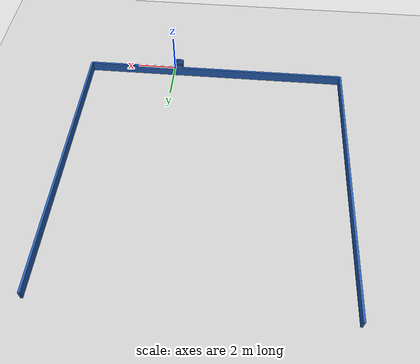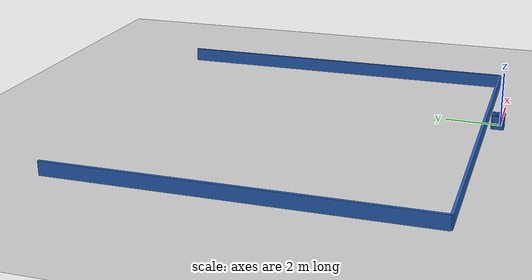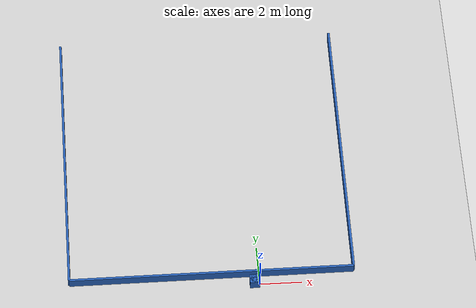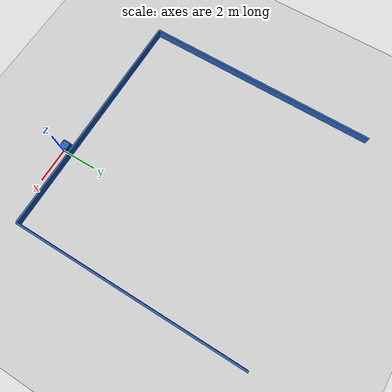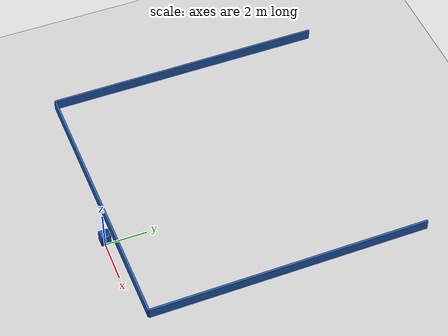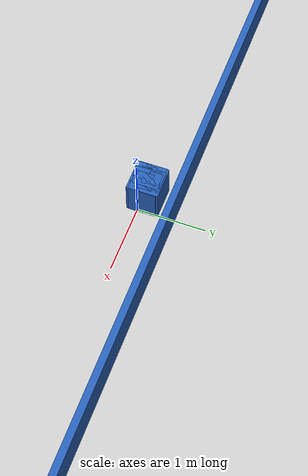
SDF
<?xml version="1.0" ?>
    <sdf version="1.5">
      <world name="default">
        <!-- A global light source -->
        <include>
          <uri>model://sun</uri>
        </include>
        <!-- A ground plane -->
        <include>
          <uri>model://ground_plane</uri>
        </include>

    <model name='libopen_space_final_T2B_125_86'>
      <static>1</static>
      <pose frame=''>-0.225000 0.075000 0.000000 0.000000 0.000000 0.000000</pose>
      <link name='link'>
        <inertial>
          <mass>1</mass>
          <inertia>
            <ixx>0.145833</ixx>
            <ixy>0</ixy>
            <ixz>0</ixz>
            <iyy>0.145833</iyy>
            <iyz>0</iyz>
            <izz>0.125</izz>
          </inertia>
        </inertial>
        <collision name='collision'>
          <geometry>
            <box>
              <size>0.34 0.28 1</size>
            </box>
          </geometry>
          <max_contacts>10</max_contacts>
          <surface>
            <contact>
              <ode/>
            </contact>
            <bounce/>
            <friction>
              <torsional>
                <ode/>
              </torsional>
              <ode/>
            </friction>
          </surface>
        </collision>
        <visual name='visual'>
          <geometry>
            <box>
              <size>0.34 0.28 1</size>
            </box>
          </geometry>
	    <material>
              <ambient>0.152000 0.379000 0.720000 1</ambient>
	      <diffuse>0.152000 0.379000 0.720000 1</diffuse>
          </material>
          <material>
            <script>
              <name>Gazebo/Grey</name>
              <uri>file://media/materials/scripts/gazebo.material</uri>
            </script>
          </material>
        </visual>
        <self_collide>0</self_collide>
        <kinematic>0</kinematic>
        <gravity>1</gravity>
      </link>
      <plugin name='libopen_space_final_T2B_125_86' filename='libopen_space_final_T2B_125_86.so'/>
    </model>

    <model name='libopen_space_final_T2B_125_67'>
      <static>1</static>
      <pose frame=''>-0.225000 0.075000 0.000000 0.000000 0.000000 0.000000</pose>
      <link name='link'>
        <inertial>
          <mass>1</mass>
          <inertia>
            <ixx>0.145833</ixx>
            <ixy>0</ixy>
            <ixz>0</ixz>
            <iyy>0.145833</iyy>
            <iyz>0</iyz>
            <izz>0.125</izz>
          </inertia>
        </inertial>
        <collision name='collision'>
          <geometry>
            <box>
              <size>0.31 0.43 1</size>
            </box>
          </geometry>
          <max_contacts>10</max_contacts>
          <surface>
            <contact>
              <ode/>
            </contact>
            <bounce/>
            <friction>
              <torsional>
                <ode/>
              </torsional>
              <ode/>
            </friction>
          </surface>
        </collision>
        <visual name='visual'>
          <geometry>
            <box>
              <size>0.31 0.43 1</size>
            </box>
          </geometry>
	    <material>
              <ambient>0.152000 0.379000 0.720000 1</ambient>
	      <diffuse>0.152000 0.379000 0.720000 1</diffuse>
          </material>
          <material>
            <script>
              <name>Gazebo/Grey</name>
              <uri>file://media/materials/scripts/gazebo.material</uri>
            </script>
          </material>
        </visual>
        <self_collide>0</self_collide>
        <kinematic>0</kinematic>
        <gravity>1</gravity>
      </link>
      <plugin name='libopen_space_final_T2B_125_67' filename='libopen_space_final_T2B_125_67.so'/>
    </model>

    <model name='libopen_space_final_T2B_64_52'>
      <static>1</static>
      <pose frame=''>-0.225000 0.075000 0.000000 0.000000 0.000000 0.000000</pose>
      <link name='link'>
        <inertial>
          <mass>1</mass>
          <inertia>
            <ixx>0.145833</ixx>
            <ixy>0</ixy>
            <ixz>0</ixz>
            <iyy>0.145833</iyy>
            <iyz>0</iyz>
            <izz>0.125</izz>
          </inertia>
        </inertial>
        <collision name='collision'>
          <geometry>
            <box>
              <size>0.17 0.14 1</size>
            </box>
          </geometry>
          <max_contacts>10</max_contacts>
          <surface>
            <contact>
              <ode/>
            </contact>
            <bounce/>
            <friction>
              <torsional>
                <ode/>
              </torsional>
              <ode/>
            </friction>
          </surface>
        </collision>
        <visual name='visual'>
          <geometry>
            <box>
              <size>0.17 0.14 1</size>
            </box>
          </geometry>
	    <material>
              <ambient>0.152000 0.379000 0.720000 1</ambient>
	      <diffuse>0.152000 0.379000 0.720000 1</diffuse>
          </material>
          <material>
            <script>
              <name>Gazebo/Grey</name>
              <uri>file://media/materials/scripts/gazebo.material</uri>
            </script>
          </material>
        </visual>
        <self_collide>0</self_collide>
        <kinematic>0</kinematic>
        <gravity>1</gravity>
      </link>
      <plugin name='libopen_space_final_T2B_64_52' filename='libopen_space_final_T2B_64_52.so'/>
    </model>

    <model name='libopen_space_final_T2B_134_25'>
      <static>1</static>
      <pose frame=''>-0.225000 0.075000 0.000000 0.000000 0.000000 0.000000</pose>
      <link name='link'>
        <inertial>
          <mass>1</mass>
          <inertia>
            <ixx>0.145833</ixx>
            <ixy>0</ixy>
            <ixz>0</ixz>
            <iyy>0.145833</iyy>
            <iyz>0</iyz>
            <izz>0.125</izz>
          </inertia>
        </inertial>
        <collision name='collision'>
          <geometry>
            <box>
              <size>0.26 0.36 1</size>
            </box>
          </geometry>
          <max_contacts>10</max_contacts>
          <surface>
            <contact>
              <ode/>
            </contact>
            <bounce/>
            <friction>
              <torsional>
                <ode/>
              </torsional>
              <ode/>
            </friction>
          </surface>
        </collision>
        <visual name='visual'>
          <geometry>
            <box>
              <size>0.26 0.36 1</size>
            </box>
          </geometry>
	    <material>
              <ambient>0.152000 0.379000 0.720000 1</ambient>
	      <diffuse>0.152000 0.379000 0.720000 1</diffuse>
          </material>
          <material>
            <script>
              <name>Gazebo/Grey</name>
              <uri>file://media/materials/scripts/gazebo.material</uri>
            </script>
          </material>
        </visual>
        <self_collide>0</self_collide>
        <kinematic>0</kinematic>
        <gravity>1</gravity>
      </link>
      <plugin name='libopen_space_final_T2B_134_25' filename='libopen_space_final_T2B_134_25.so'/>
    </model>

    <model name='libopen_space_final_T2B_56_75'>
      <static>1</static>
      <pose frame=''>-0.225000 0.075000 0.000000 0.000000 0.000000 0.000000</pose>
      <link name='link'>
        <inertial>
          <mass>1</mass>
          <inertia>
            <ixx>0.145833</ixx>
            <ixy>0</ixy>
            <ixz>0</ixz>
            <iyy>0.145833</iyy>
            <iyz>0</iyz>
            <izz>0.125</izz>
          </inertia>
        </inertial>
        <collision name='collision'>
          <geometry>
            <box>
              <size>0.48 0.40 1</size>
            </box>
          </geometry>
          <max_contacts>10</max_contacts>
          <surface>
            <contact>
              <ode/>
            </contact>
            <bounce/>
            <friction>
              <torsional>
                <ode/>
              </torsional>
              <ode/>
            </friction>
          </surface>
        </collision>
        <visual name='visual'>
          <geometry>
            <box>
              <size>0.48 0.40 1</size>
            </box>
          </geometry>
	    <material>
              <ambient>0.152000 0.379000 0.720000 1</ambient>
	      <diffuse>0.152000 0.379000 0.720000 1</diffuse>
          </material>
          <material>
            <script>
              <name>Gazebo/Grey</name>
              <uri>file://media/materials/scripts/gazebo.material</uri>
            </script>
          </material>
        </visual>
        <self_collide>0</self_collide>
        <kinematic>0</kinematic>
        <gravity>1</gravity>
      </link>
      <plugin name='libopen_space_final_T2B_56_75' filename='libopen_space_final_T2B_56_75.so'/>
    </model>

    <model name='libopen_space_final_T2B_83_61'>
      <static>1</static>
      <pose frame=''>-0.225000 0.075000 0.000000 0.000000 0.000000 0.000000</pose>
      <link name='link'>
        <inertial>
          <mass>1</mass>
          <inertia>
            <ixx>0.145833</ixx>
            <ixy>0</ixy>
            <ixz>0</ixz>
            <iyy>0.145833</iyy>
            <iyz>0</iyz>
            <izz>0.125</izz>
          </inertia>
        </inertial>
        <collision name='collision'>
          <geometry>
            <box>
              <size>0.47 0.46 1</size>
            </box>
          </geometry>
          <max_contacts>10</max_contacts>
          <surface>
            <contact>
              <ode/>
            </contact>
            <bounce/>
            <friction>
              <torsional>
                <ode/>
              </torsional>
              <ode/>
            </friction>
          </surface>
        </collision>
        <visual name='visual'>
          <geometry>
            <box>
              <size>0.47 0.46 1</size>
            </box>
          </geometry>
	    <material>
              <ambient>0.152000 0.379000 0.720000 1</ambient>
	      <diffuse>0.152000 0.379000 0.720000 1</diffuse>
          </material>
          <material>
            <script>
              <name>Gazebo/Grey</name>
              <uri>file://media/materials/scripts/gazebo.material</uri>
            </script>
          </material>
        </visual>
        <self_collide>0</self_collide>
        <kinematic>0</kinematic>
        <gravity>1</gravity>
      </link>
      <plugin name='libopen_space_final_T2B_83_61' filename='libopen_space_final_T2B_83_61.so'/>
    </model>

    <model name='libopen_space_final_T2B_103_35'>
      <static>1</static>
      <pose frame=''>-0.225000 0.075000 0.000000 0.000000 0.000000 0.000000</pose>
      <link name='link'>
        <inertial>
          <mass>1</mass>
          <inertia>
            <ixx>0.145833</ixx>
            <ixy>0</ixy>
            <ixz>0</ixz>
            <iyy>0.145833</iyy>
            <iyz>0</iyz>
            <izz>0.125</izz>
          </inertia>
        </inertial>
        <collision name='collision'>
          <geometry>
            <box>
              <size>0.30 0.31 1</size>
            </box>
          </geometry>
          <max_contacts>10</max_contacts>
          <surface>
            <contact>
              <ode/>
            </contact>
            <bounce/>
            <friction>
              <torsional>
                <ode/>
              </torsional>
              <ode/>
            </friction>
          </surface>
        </collision>
        <visual name='visual'>
          <geometry>
            <box>
              <size>0.30 0.31 1</size>
            </box>
          </geometry>
	    <material>
              <ambient>0.152000 0.379000 0.720000 1</ambient>
	      <diffuse>0.152000 0.379000 0.720000 1</diffuse>
          </material>
          <material>
            <script>
              <name>Gazebo/Grey</name>
              <uri>file://media/materials/scripts/gazebo.material</uri>
            </script>
          </material>
        </visual>
        <self_collide>0</self_collide>
        <kinematic>0</kinematic>
        <gravity>1</gravity>
      </link>
      <plugin name='libopen_space_final_T2B_103_35' filename='libopen_space_final_T2B_103_35.so'/>
    </model>

    <model name='libopen_space_final_T2B_123_20'>
      <static>1</static>
      <pose frame=''>-0.225000 0.075000 0.000000 0.000000 0.000000 0.000000</pose>
      <link name='link'>
        <inertial>
          <mass>1</mass>
          <inertia>
            <ixx>0.145833</ixx>
            <ixy>0</ixy>
            <ixz>0</ixz>
            <iyy>0.145833</iyy>
            <iyz>0</iyz>
            <izz>0.125</izz>
          </inertia>
        </inertial>
        <collision name='collision'>
          <geometry>
            <box>
              <size>0.36 0.41 1</size>
            </box>
          </geometry>
          <max_contacts>10</max_contacts>
          <surface>
            <contact>
              <ode/>
            </contact>
            <bounce/>
            <friction>
              <torsional>
                <ode/>
              </torsional>
              <ode/>
            </friction>
          </surface>
        </collision>
        <visual name='visual'>
          <geometry>
            <box>
              <size>0.36 0.41 1</size>
            </box>
          </geometry>
	    <material>
              <ambient>0.152000 0.379000 0.720000 1</ambient>
	      <diffuse>0.152000 0.379000 0.720000 1</diffuse>
          </material>
          <material>
            <script>
              <name>Gazebo/Grey</name>
              <uri>file://media/materials/scripts/gazebo.material</uri>
            </script>
          </material>
        </visual>
        <self_collide>0</self_collide>
        <kinematic>0</kinematic>
        <gravity>1</gravity>
      </link>
      <plugin name='libopen_space_final_T2B_123_20' filename='libopen_space_final_T2B_123_20.so'/>
    </model>

    <model name='libopen_space_final_T2B_103_85'>
      <static>1</static>
      <pose frame=''>-0.225000 0.075000 0.000000 0.000000 0.000000 0.000000</pose>
      <link name='link'>
        <inertial>
          <mass>1</mass>
          <inertia>
            <ixx>0.145833</ixx>
            <ixy>0</ixy>
            <ixz>0</ixz>
            <iyy>0.145833</iyy>
            <iyz>0</iyz>
            <izz>0.125</izz>
          </inertia>
        </inertial>
        <collision name='collision'>
          <geometry>
            <box>
              <size>0.17 0.34 1</size>
            </box>
          </geometry>
          <max_contacts>10</max_contacts>
          <surface>
            <contact>
              <ode/>
            </contact>
            <bounce/>
            <friction>
              <torsional>
                <ode/>
              </torsional>
              <ode/>
            </friction>
          </surface>
        </collision>
        <visual name='visual'>
          <geometry>
            <box>
              <size>0.17 0.34 1</size>
            </box>
          </geometry>
	    <material>
              <ambient>0.152000 0.379000 0.720000 1</ambient>
	      <diffuse>0.152000 0.379000 0.720000 1</diffuse>
          </material>
          <material>
            <script>
              <name>Gazebo/Grey</name>
              <uri>file://media/materials/scripts/gazebo.material</uri>
            </script>
          </material>
        </visual>
        <self_collide>0</self_collide>
        <kinematic>0</kinematic>
        <gravity>1</gravity>
      </link>
      <plugin name='libopen_space_final_T2B_103_85' filename='libopen_space_final_T2B_103_85.so'/>
    </model>

    <model name='libopen_space_final_T2B_85_42'>
      <static>1</static>
      <pose frame=''>-0.225000 0.075000 0.000000 0.000000 0.000000 0.000000</pose>
      <link name='link'>
        <inertial>
          <mass>1</mass>
          <inertia>
            <ixx>0.145833</ixx>
            <ixy>0</ixy>
            <ixz>0</ixz>
            <iyy>0.145833</iyy>
            <iyz>0</iyz>
            <izz>0.125</izz>
          </inertia>
        </inertial>
        <collision name='collision'>
          <geometry>
            <box>
              <size>0.46 0.18 1</size>
            </box>
          </geometry>
          <max_contacts>10</max_contacts>
          <surface>
            <contact>
              <ode/>
            </contact>
            <bounce/>
            <friction>
              <torsional>
                <ode/>
              </torsional>
              <ode/>
            </friction>
          </surface>
        </collision>
        <visual name='visual'>
          <geometry>
            <box>
              <size>0.46 0.18 1</size>
            </box>
          </geometry>
	    <material>
              <ambient>0.152000 0.379000 0.720000 1</ambient>
	      <diffuse>0.152000 0.379000 0.720000 1</diffuse>
          </material>
          <material>
            <script>
              <name>Gazebo/Grey</name>
              <uri>file://media/materials/scripts/gazebo.material</uri>
            </script>
          </material>
        </visual>
        <self_collide>0</self_collide>
        <kinematic>0</kinematic>
        <gravity>1</gravity>
      </link>
      <plugin name='libopen_space_final_T2B_85_42' filename='libopen_space_final_T2B_85_42.so'/>
    </model>

    <model name='libopen_space_final_T2B_119_99'>
      <static>1</static>
      <pose frame=''>-0.225000 0.075000 0.000000 0.000000 0.000000 0.000000</pose>
      <link name='link'>
        <inertial>
          <mass>1</mass>
          <inertia>
            <ixx>0.145833</ixx>
            <ixy>0</ixy>
            <ixz>0</ixz>
            <iyy>0.145833</iyy>
            <iyz>0</iyz>
            <izz>0.125</izz>
          </inertia>
        </inertial>
        <collision name='collision'>
          <geometry>
            <box>
              <size>0.15 0.11 1</size>
            </box>
          </geometry>
          <max_contacts>10</max_contacts>
          <surface>
            <contact>
              <ode/>
            </contact>
            <bounce/>
            <friction>
              <torsional>
                <ode/>
              </torsional>
              <ode/>
            </friction>
          </surface>
        </collision>
        <visual name='visual'>
          <geometry>
            <box>
              <size>0.15 0.11 1</size>
            </box>
          </geometry>
	    <material>
              <ambient>0.152000 0.379000 0.720000 1</ambient>
	      <diffuse>0.152000 0.379000 0.720000 1</diffuse>
          </material>
          <material>
            <script>
              <name>Gazebo/Grey</name>
              <uri>file://media/materials/scripts/gazebo.material</uri>
            </script>
          </material>
        </visual>
        <self_collide>0</self_collide>
        <kinematic>0</kinematic>
        <gravity>1</gravity>
      </link>
      <plugin name='libopen_space_final_T2B_119_99' filename='libopen_space_final_T2B_119_99.so'/>
    </model>

    <model name='libopen_space_final_T2B_81_68'>
      <static>1</static>
      <pose frame=''>-0.225000 0.075000 0.000000 0.000000 0.000000 0.000000</pose>
      <link name='link'>
        <inertial>
          <mass>1</mass>
          <inertia>
            <ixx>0.145833</ixx>
            <ixy>0</ixy>
            <ixz>0</ixz>
            <iyy>0.145833</iyy>
            <iyz>0</iyz>
            <izz>0.125</izz>
          </inertia>
        </inertial>
        <collision name='collision'>
          <geometry>
            <box>
              <size>0.42 0.12 1</size>
            </box>
          </geometry>
          <max_contacts>10</max_contacts>
          <surface>
            <contact>
              <ode/>
            </contact>
            <bounce/>
            <friction>
              <torsional>
                <ode/>
              </torsional>
              <ode/>
            </friction>
          </surface>
        </collision>
        <visual name='visual'>
          <geometry>
            <box>
              <size>0.42 0.12 1</size>
            </box>
          </geometry>
	    <material>
              <ambient>0.152000 0.379000 0.720000 1</ambient>
	      <diffuse>0.152000 0.379000 0.720000 1</diffuse>
          </material>
          <material>
            <script>
              <name>Gazebo/Grey</name>
              <uri>file://media/materials/scripts/gazebo.material</uri>
            </script>
          </material>
        </visual>
        <self_collide>0</self_collide>
        <kinematic>0</kinematic>
        <gravity>1</gravity>
      </link>
      <plugin name='libopen_space_final_T2B_81_68' filename='libopen_space_final_T2B_81_68.so'/>
    </model>

        <model name='bottom_wall'>
          <static>1</static>
          <pose frame=''>-2.25 0.5 0.000000 0.000000 0.000000 1.57079632</pose>
          <link name='link'>
            <inertial>
            <mass>1</mass>
            <inertia>
              <ixx>0.145833</ixx>
              <ixy>0</ixy>
              <ixz>0</ixz>
              <iyy>0.145833</iyy>
              <iyz>0</iyz>
              <izz>0.125</izz>
            </inertia>
            </inertial>
            <collision name='collision'>
            <geometry>
              <box>
              <size>0.1 13.5 1</size>
              </box>
            </geometry>
            <max_contacts>10</max_contacts>
            <surface>
              <contact>
              <ode/>
              </contact>
              <bounce/>
              <friction>
              <torsional>
                <ode/>
              </torsional>
              <ode/>
              </friction>
            </surface>
            </collision>
            <visual name='visual'>
            <geometry>
              <box>
              <size>0.1 13.5 1</size>
              </box>
            </geometry>
            <material>
              <ambient>0.152000 0.379000 0.720000 1</ambient>
            <diffuse>0.152000 0.379000 0.720000 1</diffuse>
            </material>
            <material>
              <script>
              <name>Gazebo/Grey</name>
              <uri>file://media/materials/scripts/gazebo.material</uri>
              </script>
            </material>
            </visual>
            <self_collide>0</self_collide>
            <kinematic>0</kinematic>
            <gravity>1</gravity>
          </link>
        </model>

        <model name='left_wall'>
          <static>1</static>
          <pose frame=''>-9 7.25 0.000000 0.000000 0.000000 0.000000</pose>
          <link name='link'>
            <inertial>
            <mass>1</mass>
            <inertia>
              <ixx>0.145833</ixx>
              <ixy>0</ixy>
              <ixz>0</ixz>
              <iyy>0.145833</iyy>
              <iyz>0</iyz>
              <izz>0.125</izz>
            </inertia>
            </inertial>
            <collision name='collision'>
            <geometry>
              <box>
              <size>0.1 13.5 1</size>
              </box>
            </geometry>
            <max_contacts>10</max_contacts>
            <surface>
              <contact>
              <ode/>
              </contact>
              <bounce/>
              <friction>
              <torsional>
                <ode/>
              </torsional>
              <ode/>
              </friction>
            </surface>
            </collision>
            <visual name='visual'>
            <geometry>
              <box>
              <size>0.1 13.5 1</size>
              </box>
            </geometry>
            <material>
              <ambient>0.152000 0.379000 0.720000 1</ambient>
            <diffuse>0.152000 0.379000 0.720000 1</diffuse>
            </material>
            <material>
              <script>
              <name>Gazebo/Grey</name>
              <uri>file://media/materials/scripts/gazebo.material</uri>
              </script>
            </material>
            </visual>
            <self_collide>0</self_collide>
            <kinematic>0</kinematic>
            <gravity>1</gravity>
          </link>
        </model>

        <model name='right_wall'>
          <static>1</static>
          <pose frame=''>4.5 7.25 0.000000 0.000000 0.000000 0.000000</pose>
          <link name='link'>
            <inertial>
            <mass>1</mass>
            <inertia>
              <ixx>0.145833</ixx>
              <ixy>0</ixy>
              <ixz>0</ixz>
              <iyy>0.145833</iyy>
              <iyz>0</iyz>
              <izz>0.125</izz>
            </inertia>
            </inertial>
            <collision name='collision'>
            <geometry>
              <box>
              <size>0.1 13.5 1</size>
              </box>
            </geometry>
            <max_contacts>10</max_contacts>
            <surface>
              <contact>
              <ode/>
              </contact>
              <bounce/>
              <friction>
              <torsional>
                <ode/>
              </torsional>
              <ode/>
              </friction>
            </surface>
            </collision>
            <visual name='visual'>
            <geometry>
              <box>
              <size>0.1 13.5 1</size>
              </box>
            </geometry>
            <material>
              <ambient>0.152000 0.379000 0.720000 1</ambient>
            <diffuse>0.152000 0.379000 0.720000 1</diffuse>
            </material>
            <material>
              <script>
              <name>Gazebo/Grey</name>
              <uri>file://media/materials/scripts/gazebo.material</uri>
              </script>
            </material>
            </visual>
            <self_collide>0</self_collide>
            <kinematic>0</kinematic>
            <gravity>1</gravity>
          </link>
        </model>

      </world>
    </sdf>"
